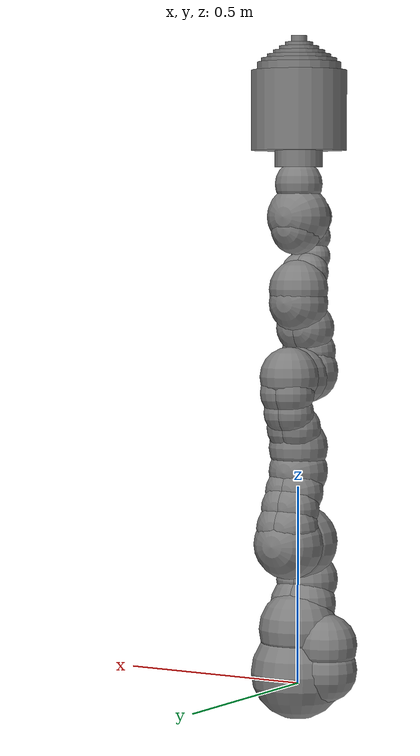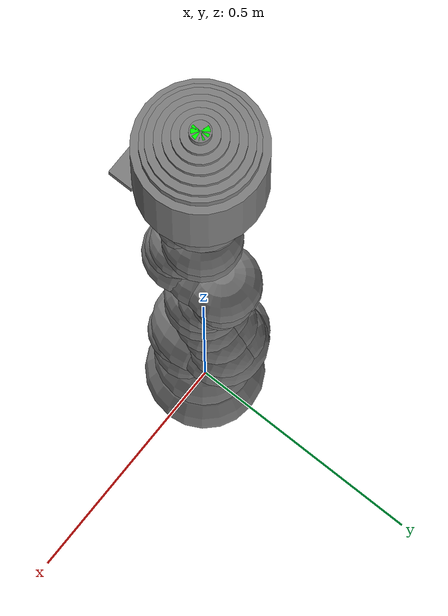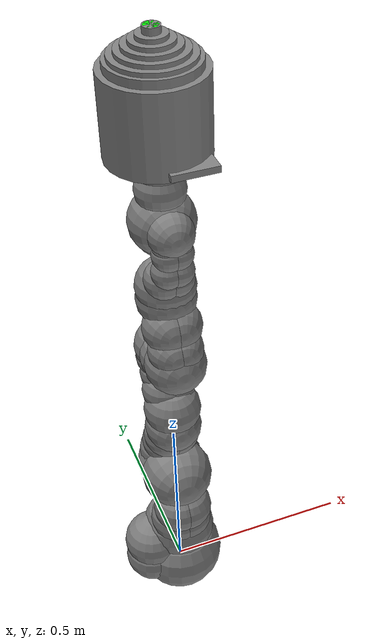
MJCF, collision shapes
<mujoco model="iiwa14">
  <compiler angle="radian" meshdir="assets" autolimits="true"/>

  <option integrator="implicitfast">
    <flag gravity="enable"/>
  </option>

  <default>
    <default class="iiwa">
      <material specular="0.5" shininess="0.25"/>
      <joint axis="0 0 1"/>
      <general gaintype="fixed" biastype="affine" gainprm="2000" biasprm="0 -2000 -200"/>
      <default class="joint1">
        <joint type="hinge" range="-2.96706 2.96706" damping="10." />
        <general ctrllimited="true" />
        <default class="joint2">
          <joint type="hinge" range="-2.0944 2.0944" damping="10."/>
          <general ctrllimited="true"/>
        </default>
      </default>
      <default class="joint3">
        <joint type="hinge" range="-3.05433 3.05433" damping="10."/>
        <general ctrllimited="true"/>
      </default>
      <default class="visual">
        <geom type="mesh" contype="0" conaffinity="0" group="2" material="gray"/>
      </default>
      <default class="collision">
        <geom group="3"/>
      </default>
      <site size="0.001" rgba="1 0 0 1" group="4"/>
    </default>
  </default>

  <asset>
    <material class="iiwa" name="gray" rgba="0.4 0.4 0.4 1"/>
    <material class="iiwa" name="light_gray" rgba="0.6 0.6 0.6 1"/>
    <material class="iiwa" name="black" rgba="0 0 0 1"/>
    <material class="iiwa" name="orange" rgba="1 0.423529 0.0392157 1"/>

    <mesh file="link_0.obj"/>
    <mesh file="link_1.obj"/>
    <mesh file="link_2_orange.obj"/>
    <mesh file="link_2_grey.obj"/>
    <mesh file="link_3.obj"/>
    <mesh file="band.obj"/>
    <mesh file="kuka.obj"/>
    <mesh file="link_4_orange.obj"/>
    <mesh file="link_4_grey.obj"/>
    <mesh file="link_5.obj"/>
    <mesh file="link_6_orange.obj"/>
    <mesh file="link_6_grey.obj"/>
    <mesh file="link_7.obj"/>
    <mesh file="ft_sensor_mount.STL"/>
    <mesh file="baseplate_picobot2.STL" scale="0.001 0.001 0.001"/>
    <mesh file="shell_camera_mounting_picobot2.STL" scale="0.001 0.001 0.001"/>
    <mesh file="nose_picobot2.STL" scale="0.001 0.001 0.001"/>
  </asset>

  <worldbody>
    <light name="top" pos="0 0 2" mode="trackcom"/>
    <body name="base" childclass="iiwa" >
      <inertial mass="5" pos="-0.1 0 0.07" diaginertia="0.05 0.06 0.03"/>
      <geom class="visual" mesh="link_0"/>
      <geom class="collision" size="0.12" pos="0 0 0.03"/>
      <geom class="collision" size="0.08" pos="-0.08 0 0.103"/>
      <geom class="collision" size="0.08" pos="-0.08 0 0.04"/>
      <geom class="collision" size="0.1" pos="0 0 0.14"/>
      <body name="link1" pos="0 0 0.1575">
        <inertial mass="5.76" pos="0 -0.03 0.12" diaginertia="0.0333 0.033 0.0123"/>
        <joint name="iiwa_joint_1" class="joint1"/>
        <geom class="visual" mesh="link_1"/>
        <geom class="collision" size="0.08" pos="0 0 -0.0005"/>
        <geom class="collision" size="0.075" pos="0.01 -0.025 0.0425"/>
        <geom class="collision" size="0.075" pos="-0.01 -0.025 0.0425"/>
        <geom class="collision" size="0.07" pos="0.01 -0.045 0.1025"/>
        <geom class="collision" size="0.07" pos="-0.01 -0.045 0.1025"/>
        <body name="link2" pos="0 0 0.2025" quat="0 0 1 1">
          <inertial mass="6.35" pos="0.0003 0.059 0.042" diaginertia="0.0305 0.0304 0.011" quat="0 0 1 1"/>
          <joint name="iiwa_joint_2" class="joint2"/>
          <geom class="visual" material="orange" mesh="link_2_orange"/>
          <geom class="visual" mesh="link_2_grey"/>
          <geom class="collision" size="0.095" pos="0 0 -0.01"/>
          <geom class="collision" size="0.09" pos="0 0 0.045"/>
          <geom class="collision" size="0.07" pos="-0.01 0.04 0.054"/>
          <geom class="collision" size="0.065" pos="-0.01 0.09 0.04"/>
          <geom class="collision" size="0.065" pos="-0.01 0.13 0.02"/>
          <geom class="collision" size="0.07" pos="0.01 0.04 0.054"/>
          <geom class="collision" size="0.065" pos="0.01 0.09 0.04"/>
          <geom class="collision" size="0.065" pos="0.01 0.13 0.02"/>
          <geom class="collision" size="0.075" pos="0 0.18 0"/>
          <body name="link3" pos="0 0.2045 0" quat="0 0 1 1">
            <inertial mass="3.5" pos="0 0.03 0.13" diaginertia="0.025 0.0238 0.0076"/>
            <joint name="iiwa_joint_3" class="joint1"/>
            <geom class="visual" mesh="link_3"/>
            <geom class="visual" material="light_gray" mesh="band"/>
            <geom class="visual" material="black" mesh="kuka"/>
            <geom class="collision" size="0.075" pos="0 0 0.0355"/>
            <geom class="collision" size="0.06" pos="0.01 0.023 0.0855"/>
            <geom class="collision" size="0.055" pos="0.01 0.048 0.1255"/>
            <geom class="collision" size="0.06" pos="0.01 0.056 0.1755"/>
            <geom class="collision" size="0.06" pos="-0.01 0.023 0.0855"/>
            <geom class="collision" size="0.055" pos="-0.01 0.048 0.1255"/>
            <geom class="collision" size="0.06" pos="-0.01 0.056 0.1755"/>
            <geom class="collision" size="0.075" pos="0 0.045 0.2155"/>
            <geom class="collision" size="0.075" pos="0 0 0.2155"/>
            <body name="link4" pos="0 0 0.2155" quat="1 1 0 0">
              <inertial mass="3.5" pos="0 0.067 0.034" diaginertia="0.017 0.0164 0.006" quat="1 1 0 0"/>
              <joint name="iiwa_joint_4"  class="joint2"/>
              <geom class="visual" material="orange" mesh="link_4_orange"/>
              <geom class="visual" mesh="link_4_grey"/>
              <geom class="collision" size="0.078" pos="0 0.01 0.046"/>
              <geom class="collision" size="0.06" pos="0.01 0.06 0.052"/>
              <geom class="collision" size="0.065" pos="0.01 0.12 0.034"/>
              <geom class="collision" size="0.06" pos="-0.01 0.06 0.052"/>
              <geom class="collision" size="0.065" pos="-0.01 0.12 0.034"/>
              <geom class="collision" size="0.075" pos="0 0.184 0"/>
              <body name="link5" pos="0 0.1845 0" quat="0 0 1 1">
                <inertial mass="3.5" pos="0.0001 0.021 0.076" diaginertia="0.01 0.0087 0.00449"/>
                <joint name="iiwa_joint_5" class="joint1"/>
                <geom class="visual" mesh="link_5"/>
                <geom class="visual" material="light_gray" mesh="band"/>
                <geom class="visual" material="black" mesh="kuka"/>
                <geom class="collision" size="0.075" pos="0 0 0.0335"/>
                <geom class="collision" size="0.05" pos="-0.012 0.031 0.0755"/>
                <geom class="collision" size="0.05" pos="0.012 0.031 0.0755"/>
                <geom class="collision" size="0.04" pos="-0.012 0.06 0.1155"/>
                <geom class="collision" size="0.04" pos="0.012 0.06 0.1155"/>
                <geom class="collision" size="0.04" pos="-0.01 0.065 0.1655"/>
                <geom class="collision" size="0.04" pos="0.01 0.065 0.1655"/>
                <geom class="collision" size="0.035" pos="-0.012 0.065 0.1855"/>
                <geom class="collision" size="0.035" pos="0.012 0.065 0.1855"/>
                <body name="link6" pos="0 0 0.2155" quat="1 1 0 0">
                  <inertial mass="1.8" pos="0 0.0006 0.0004" diaginertia="0.0049 0.0047 0.0036" quat="1 1 0 0"/>
                  <joint name="iiwa_joint_6" class="joint2"/>
                  <geom class="visual" material="orange" mesh="link_6_orange"/>
                  <geom class="visual" mesh="link_6_grey"/>
                  <geom class="collision" size="0.055" pos="0 0 -0.059"/>
                  <geom class="collision" size="0.065" pos="0 -0.03 0.011"/>
                  <geom class="collision" size="0.08"/>
                  <body name="link7" pos="0 0.081 0" quat="0 0 1 1">
                    <inertial mass="1.2" pos="0 0 0.02" diaginertia="0.001 0.001 0.001"/>
                    <joint name="iiwa_joint_7" class="joint3"/>
                    <geom class="visual" mesh="link_7"/>
                    <geom class="collision" size="0.06" pos="0 0 0.001"/>
                    <site pos="0 0 0.045" name="attachment_site"/>
                      <body name="ft_sensor" pos="-0.038 -0.038 0.0451">
                          <geom class="visual" mesh="ft_sensor_mount" />
                          <geom class="collision" type="cylinder" size="0.06 0.0225" pos="0.038 0.038 0.021"/>
                          <body name="picobot_probe" pos="0.038 0.038 0.">
                            <site pos="0.0 0.0 0.045" name="ft_sensor_site" group="4"/>
                            <inertial mass="3.1" pos="0.015 0.005 0.05" diaginertia="0.01 0.01 0.01"/>
                            <geom class="visual" material="light_gray" mesh="baseplate_picobot2" pos="0.0 0.0 0.0585" quat="0 1 0 0"/>
                            <geom class="visual" material="light_gray" mesh="shell_camera_mounting_picobot2" pos="0.0 0.0 0.065" quat="0 0 0 1"/>
                            <geom class="visual" material="light_gray" mesh="nose_picobot2" pos="0.0 0.0 0.065" quat="0 0 0 1"/>
                            <geom class="collision" type="cylinder" size="0.12 0.1" pos="0.0 0.0 0.14" quat="0 0 0 1"/>
                            <geom class="collision" type="box" size="0.055 0.025 0.008" pos="0.0375 -0.105 0.055"/>
                            <geom class="collision" type="cylinder" size="0.02 0.01" pos="0.0 0.0 0.316"/>
                            <geom class="collision" type="cylinder" size="0.035 0.01" pos="0.0 0.0 0.3"/>
                            <geom class="collision" type="cylinder" size="0.05 0.01" pos="0.0 0.0 0.29"/>
                            <geom class="collision" type="cylinder" size="0.065 0.01" pos="0.0 0.0 0.28"/>
                            <geom class="collision" type="cylinder" size="0.08 0.01" pos="0.0 0.0 0.27"/>
                            <geom class="collision" type="cylinder" size="0.095 0.01" pos="0.0 0.0 0.26"/>
                            <geom class="collision" type="cylinder" size="0.105 0.01" pos="0.0 0.0 0.25"/>
                          <body name="tool_link_ee" pos="0.0 0.0 0.3255" >
                            <site pos="0.0 0.0 0." name="tool_tip_site" group="4"/>
                            <inertial mass="0.0001" pos="0 0 0" diaginertia="0 0 0"/>
                            <geom type="cylinder" size="0.017 0.0005" rgba="0 1 0 1" condim="4"/>
                            </body>
                          </body>
                      </body>
                  </body>
                </body>
              </body>
            </body>
          </body>
        </body>
      </body>
    </body>
  </worldbody>

  <sensor>
    <force name="force_sensor" site="ft_sensor_site"/>
    <torque name= "torque_sensor" site="ft_sensor_site"/>
  </sensor>

  <contact>
    <exclude body1="base" body2="link1"/>
    <exclude body1="base" body2="link2"/>
    <exclude body1="base" body2="link3"/>
    <exclude body1="link1" body2="link3"/>
    <exclude body1="link3" body2="link5"/>
    <exclude body1="link4" body2="link7"/>
    <exclude body1="link5" body2="link7"/>
  </contact>

  <actuator>
    <general name="actuator1" joint="iiwa_joint_1" class="joint1" ctrlrange="-320 320"/>
    <general name="actuator2" joint="iiwa_joint_2" class="joint2" ctrlrange="-320 320"/>
    <general name="actuator3" joint="iiwa_joint_3" class="joint1" ctrlrange="-176 176"/>
    <general name="actuator4" joint="iiwa_joint_4" class="joint2" ctrlrange="-176 176"/>
    <general name="actuator5" joint="iiwa_joint_5" class="joint1" ctrlrange="-110 110"/>
    <general name="actuator6" joint="iiwa_joint_6" class="joint2" ctrlrange="-40 40"/>
    <general name="actuator7" joint="iiwa_joint_7" class="joint3" ctrlrange="-40 40"/>
  </actuator>

  <keyframe>
    <key name="home" qpos="-0.88 0.5327 -1.8212 1.4725 -0.5148 -1.53 -1.1465" ctrl="0.0 0.0 0.0 0.0 0.0 0.0 0.0"/>
  </keyframe>
</mujoco>
